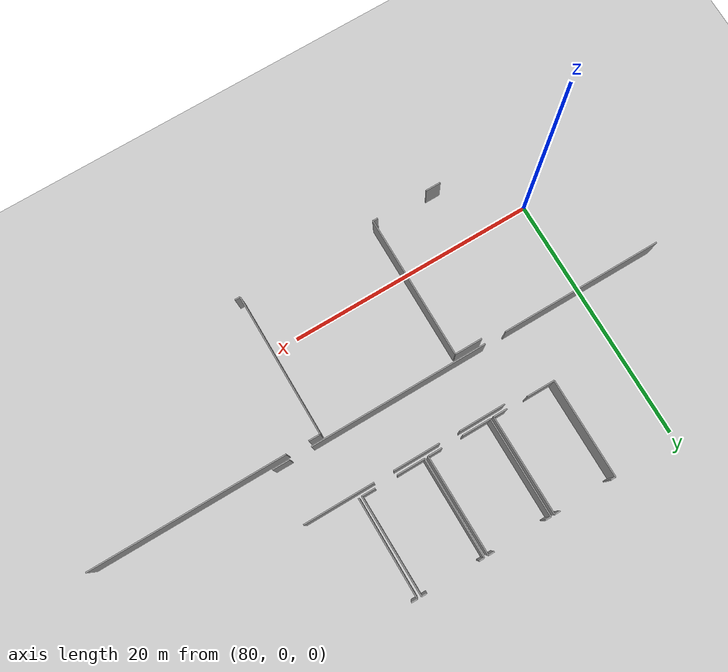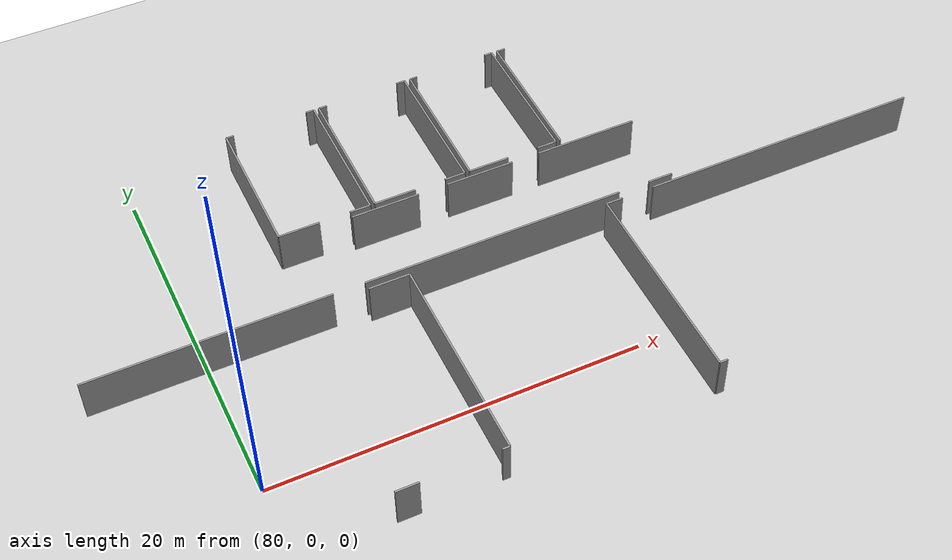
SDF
<sdf version="1.6">
 <world name="default">
  <model name="ground_plane">
   <static>1</static>
   <link name="link">
    <collision name="collision">
     <geometry><plane><normal>0 0 1</normal><size>100 100</size></plane></geometry>
     <surface><friction><ode><mu>100</mu><mu2>50</mu2></ode></friction></surface>
    </collision>
    <visual name="visual">
     <cast_shadows>0</cast_shadows>
     <geometry><plane><normal>0 0 1</normal><size>100 100</size></plane></geometry>
     <material>
      <script><uri>file://media/materials/scripts/gazebo.material</uri><name>Gazebo/Grey</name></script>
     </material>
    </visual>
   </link>
  </model>
  <model name="50037765_PLAN3">
   <static>1</static>
   <link name="Wall_321">
    <collision name="Wall_321_Collision">
     <geometry><box><size>1.38019559125 0.1 2.5</size></box></geometry>
     <pose>0.690097795627 0 1.25 0 0 0</pose>
    </collision>
    <visual name="Wall_321_Visual">
     <pose>0.690097795627 0 1.25 0 0 0</pose>
     <geometry><box><size>1.38019559125 0.1 2.5</size></box></geometry>
     <material>
      <script><uri>file://media/materials/scripts/gazebo.material</uri><name>Gazebo/Grey</name></script>
      <ambient>1 1 1 1</ambient>
     </material>
    </visual>
    <pose>241.865500829 -13.3548284605 0 0 0 3.14159265359</pose>
   </link>
   <link name="Wall_322">
    <collision name="Wall_322_Collision">
     <geometry><box><size>14.4020741061 0.1 2.5</size></box></geometry>
     <pose>7.20103705304 0 1.25 0 0 0</pose>
    </collision>
    <visual name="Wall_322_Visual">
     <pose>7.20103705304 0 1.25 0 0 0</pose>
     <geometry><box><size>14.4020741061 0.1 2.5</size></box></geometry>
     <material>
      <script><uri>file://media/materials/scripts/gazebo.material</uri><name>Gazebo/Grey</name></script>
      <ambient>1 1 1 1</ambient>
     </material>
    </visual>
    <pose>238.709860265 -13.3548284605 0 0 0 3.14159265359</pose>
   </link>
   <link name="Wall_323">
    <collision name="Wall_323_Collision">
     <geometry><box><size>13.0378918338 0.1 2.5</size></box></geometry>
     <pose>6.51894591692 0 1.25 0 0 0</pose>
    </collision>
    <visual name="Wall_323_Visual">
     <pose>6.51894591692 0 1.25 0 0 0</pose>
     <geometry><box><size>13.0378918338 0.1 2.5</size></box></geometry>
     <material>
      <script><uri>file://media/materials/scripts/gazebo.material</uri><name>Gazebo/Grey</name></script>
      <ambient>1 1 1 1</ambient>
     </material>
    </visual>
    <pose>222.594869383 -13.3548284605 0 0 0 3.14159265359</pose>
   </link>
   <link name="Wall_333">
    <collision name="Wall_333_Collision">
     <geometry><box><size>3.74940426641 0.1 2.5</size></box></geometry>
     <pose>1.8747021332 0 1.25 0 0 0</pose>
    </collision>
    <visual name="Wall_333_Visual">
     <pose>1.8747021332 0 1.25 0 0 0</pose>
     <geometry><box><size>3.74940426641 0.1 2.5</size></box></geometry>
     <material>
      <script><uri>file://media/materials/scripts/gazebo.material</uri><name>Gazebo/Grey</name></script>
      <ambient>1 1 1 1</ambient>
     </material>
    </visual>
    <pose>225.426939232 -8.93014507304 0 0 0 0.0</pose>
   </link>
   <link name="Wall_334">
    <collision name="Wall_334_Collision">
     <geometry><box><size>3.7786349281 0.1 2.5</size></box></geometry>
     <pose>1.88931746405 0 1.25 0 0 0</pose>
    </collision>
    <visual name="Wall_334_Visual">
     <pose>1.88931746405 0 1.25 0 0 0</pose>
     <geometry><box><size>3.7786349281 0.1 2.5</size></box></geometry>
     <material>
      <script><uri>file://media/materials/scripts/gazebo.material</uri><name>Gazebo/Grey</name></script>
      <ambient>1 1 1 1</ambient>
     </material>
    </visual>
    <pose>230.833086567 -8.93014507304 0 0 0 0.0</pose>
   </link>
   <link name="Wall_335">
    <collision name="Wall_335_Collision">
     <geometry><box><size>5.68320317216 0.1 2.5</size></box></geometry>
     <pose>2.84160158608 0 1.25 0 0 0</pose>
    </collision>
    <visual name="Wall_335_Visual">
     <pose>2.84160158608 0 1.25 0 0 0</pose>
     <geometry><box><size>5.68320317216 0.1 2.5</size></box></geometry>
     <material>
      <script><uri>file://media/materials/scripts/gazebo.material</uri><name>Gazebo/Grey</name></script>
      <ambient>1 1 1 1</ambient>
     </material>
    </visual>
    <pose>236.200090234 -8.93014507304 0 0 0 0.0</pose>
   </link>
   <link name="Wall_406">
    <collision name="Wall_406_Collision">
     <geometry><box><size>1.12423666669 0.1 2.5</size></box></geometry>
     <pose>0.562118333344 0 1.25 0 0 0</pose>
    </collision>
    <visual name="Wall_406_Visual">
     <pose>0.562118333344 0 1.25 0 0 0</pose>
     <geometry><box><size>1.12423666669 0.1 2.5</size></box></geometry>
     <material>
      <script><uri>file://media/materials/scripts/gazebo.material</uri><name>Gazebo/Grey</name></script>
      <ambient>1 1 1 1</ambient>
     </material>
    </visual>
    <pose>226.587523591 -8.55652638067 0 0 0 3.14159265359</pose>
   </link>
   <link name="Wall_407">
    <collision name="Wall_407_Collision">
     <geometry><box><size>2.25279438771 0.1 2.5</size></box></geometry>
     <pose>1.12639719386 0 1.25 0 0 0</pose>
    </collision>
    <visual name="Wall_407_Visual">
     <pose>1.12639719386 0 1.25 0 0 0</pose>
     <geometry><box><size>2.25279438771 0.1 2.5</size></box></geometry>
     <material>
      <script><uri>file://media/materials/scripts/gazebo.material</uri><name>Gazebo/Grey</name></script>
      <ambient>1 1 1 1</ambient>
     </material>
    </visual>
    <pose>223.755707922 -8.55652638067 0 0 0 3.14159265359</pose>
   </link>
   <link name="Wall_408">
    <collision name="Wall_408_Collision">
     <geometry><box><size>7.96530447547 0.1 2.5</size></box></geometry>
     <pose>3.98265223773 0 1.25 0 0 0</pose>
    </collision>
    <visual name="Wall_408_Visual">
     <pose>3.98265223773 0 1.25 0 0 0</pose>
     <geometry><box><size>7.96530447547 0.1 2.5</size></box></geometry>
     <material>
      <script><uri>file://media/materials/scripts/gazebo.material</uri><name>Gazebo/Grey</name></script>
      <ambient>1 1 1 1</ambient>
     </material>
    </visual>
    <pose>221.502913534 -8.55652638067 0 0 0 1.57079632679</pose>
   </link>
   <link name="Wall_409">
    <collision name="Wall_409_Collision">
     <geometry><box><size>0.408212545037 0.1 2.5</size></box></geometry>
     <pose>0.204106272519 0 1.25 0 0 0</pose>
    </collision>
    <visual name="Wall_409_Visual">
     <pose>0.204106272519 0 1.25 0 0 0</pose>
     <geometry><box><size>0.408212545037 0.1 2.5</size></box></geometry>
     <material>
      <script><uri>file://media/materials/scripts/gazebo.material</uri><name>Gazebo/Grey</name></script>
      <ambient>1 1 1 1</ambient>
     </material>
    </visual>
    <pose>221.502913534 -0.591221905204 0 0 0 0.0</pose>
   </link>
   <link name="Wall_410">
    <collision name="Wall_410_Collision">
     <geometry><box><size>0.467436407425 0.1 2.5</size></box></geometry>
     <pose>0.233718203712 0 1.25 0 0 0</pose>
    </collision>
    <visual name="Wall_410_Visual">
     <pose>0.233718203712 0 1.25 0 0 0</pose>
     <geometry><box><size>0.467436407425 0.1 2.5</size></box></geometry>
     <material>
      <script><uri>file://media/materials/scripts/gazebo.material</uri><name>Gazebo/Grey</name></script>
      <ambient>1 1 1 1</ambient>
     </material>
    </visual>
    <pose>226.094160858 -0.591221905204 0 0 0 0.0</pose>
   </link>
   <link name="Wall_411">
    <collision name="Wall_411_Collision">
     <geometry><box><size>7.96534666925 0.1 2.5</size></box></geometry>
     <pose>3.98267333462 0 1.25 0 0 0</pose>
    </collision>
    <visual name="Wall_411_Visual">
     <pose>3.98267333462 0 1.25 0 0 0</pose>
     <geometry><box><size>7.96534666925 0.1 2.5</size></box></geometry>
     <material>
      <script><uri>file://media/materials/scripts/gazebo.material</uri><name>Gazebo/Grey</name></script>
      <ambient>1 1 1 1</ambient>
     </material>
    </visual>
    <pose>226.561597265 -0.591221905204 0 0 0 -1.5675414312</pose>
   </link>
   <link name="Wall_412">
    <collision name="Wall_412_Collision">
     <geometry><box><size>1.13847072803 0.1 2.5</size></box></geometry>
     <pose>0.569235364017 0 1.25 0 0 0</pose>
    </collision>
    <visual name="Wall_412_Visual">
     <pose>0.569235364017 0 1.25 0 0 0</pose>
     <geometry><box><size>1.13847072803 0.1 2.5</size></box></geometry>
     <material>
      <script><uri>file://media/materials/scripts/gazebo.material</uri><name>Gazebo/Grey</name></script>
      <ambient>1 1 1 1</ambient>
     </material>
    </visual>
    <pose>232.010192605 -8.5532982989 0 0 0 3.14159265359</pose>
   </link>
   <link name="Wall_413">
    <collision name="Wall_413_Collision">
     <geometry><box><size>2.29625911075 0.1 2.5</size></box></geometry>
     <pose>1.14812955538 0 1.25 0 0 0</pose>
    </collision>
    <visual name="Wall_413_Visual">
     <pose>1.14812955538 0 1.25 0 0 0</pose>
     <geometry><box><size>2.29625911075 0.1 2.5</size></box></geometry>
     <material>
      <script><uri>file://media/materials/scripts/gazebo.material</uri><name>Gazebo/Grey</name></script>
      <ambient>1 1 1 1</ambient>
     </material>
    </visual>
    <pose>229.147367016 -8.5532982989 0 0 0 3.14159265359</pose>
   </link>
   <link name="Wall_414">
    <collision name="Wall_414_Collision">
     <geometry><box><size>7.9620763937 0.1 2.5</size></box></geometry>
     <pose>3.98103819685 0 1.25 0 0 0</pose>
    </collision>
    <visual name="Wall_414_Visual">
     <pose>3.98103819685 0 1.25 0 0 0</pose>
     <geometry><box><size>7.9620763937 0.1 2.5</size></box></geometry>
     <material>
      <script><uri>file://media/materials/scripts/gazebo.material</uri><name>Gazebo/Grey</name></script>
      <ambient>1 1 1 1</ambient>
     </material>
    </visual>
    <pose>226.851107906 -8.5532982989 0 0 0 1.57079632679</pose>
   </link>
   <link name="Wall_415">
    <collision name="Wall_415_Collision">
     <geometry><box><size>0.456252502081 0.1 2.5</size></box></geometry>
     <pose>0.228126251041 0 1.25 0 0 0</pose>
    </collision>
    <visual name="Wall_415_Visual">
     <pose>0.228126251041 0 1.25 0 0 0</pose>
     <geometry><box><size>0.456252502081 0.1 2.5</size></box></geometry>
     <material>
      <script><uri>file://media/materials/scripts/gazebo.material</uri><name>Gazebo/Grey</name></script>
      <ambient>1 1 1 1</ambient>
     </material>
    </visual>
    <pose>226.851107906 -0.591221905204 0 0 0 0.0</pose>
   </link>
   <link name="Wall_416">
    <collision name="Wall_416_Collision">
     <geometry><box><size>0.480399570436 0.1 2.5</size></box></geometry>
     <pose>0.240199785218 0 1.25 0 0 0</pose>
    </collision>
    <visual name="Wall_416_Visual">
     <pose>0.240199785218 0 1.25 0 0 0</pose>
     <geometry><box><size>0.480399570436 0.1 2.5</size></box></geometry>
     <material>
      <script><uri>file://media/materials/scripts/gazebo.material</uri><name>Gazebo/Grey</name></script>
      <ambient>1 1 1 1</ambient>
     </material>
    </visual>
    <pose>231.490141006 -0.591221905204 0 0 0 0.0</pose>
   </link>
   <link name="Wall_417">
    <collision name="Wall_417_Collision">
     <geometry><box><size>7.96217512885 0.1 2.5</size></box></geometry>
     <pose>3.98108756442 0 1.25 0 0 0</pose>
    </collision>
    <visual name="Wall_417_Visual">
     <pose>3.98108756442 0 1.25 0 0 0</pose>
     <geometry><box><size>7.96217512885 0.1 2.5</size></box></geometry>
     <material>
      <script><uri>file://media/materials/scripts/gazebo.material</uri><name>Gazebo/Grey</name></script>
      <ambient>1 1 1 1</ambient>
     </material>
    </visual>
    <pose>231.970540577 -0.591221905204 0 0 0 -1.56581625649</pose>
   </link>
   <link name="Wall_418">
    <collision name="Wall_418_Collision">
     <geometry><box><size>1.07975522498 0.1 2.5</size></box></geometry>
     <pose>0.53987761249 0 1.25 0 0 0</pose>
    </collision>
    <visual name="Wall_418_Visual">
     <pose>0.53987761249 0 1.25 0 0 0</pose>
     <geometry><box><size>1.07975522498 0.1 2.5</size></box></geometry>
     <material>
      <script><uri>file://media/materials/scripts/gazebo.material</uri><name>Gazebo/Grey</name></script>
      <ambient>1 1 1 1</ambient>
     </material>
    </visual>
    <pose>237.411510526 -8.5455204011 0 0 0 3.14159265359</pose>
   </link>
   <link name="Wall_419">
    <collision name="Wall_419_Collision">
     <geometry><box><size>2.25609872338 0.1 2.5</size></box></geometry>
     <pose>1.12804936169 0 1.25 0 0 0</pose>
    </collision>
    <visual name="Wall_419_Visual">
     <pose>1.12804936169 0 1.25 0 0 0</pose>
     <geometry><box><size>2.25609872338 0.1 2.5</size></box></geometry>
     <material>
      <script><uri>file://media/materials/scripts/gazebo.material</uri><name>Gazebo/Grey</name></script>
      <ambient>1 1 1 1</ambient>
     </material>
    </visual>
    <pose>234.56215646 -8.5455204011 0 0 0 3.14159265359</pose>
   </link>
   <link name="Wall_420">
    <collision name="Wall_420_Collision">
     <geometry><box><size>7.95307843349 0.1 2.5</size></box></geometry>
     <pose>3.97653921675 0 1.25 0 0 0</pose>
    </collision>
    <visual name="Wall_420_Visual">
     <pose>3.97653921675 0 1.25 0 0 0</pose>
     <geometry><box><size>7.95307843349 0.1 2.5</size></box></geometry>
     <material>
      <script><uri>file://media/materials/scripts/gazebo.material</uri><name>Gazebo/Grey</name></script>
      <ambient>1 1 1 1</ambient>
     </material>
    </visual>
    <pose>232.306057737 -8.5455204011 0 0 0 1.57079632679</pose>
   </link>
   <link name="Wall_421">
    <collision name="Wall_421_Collision">
     <geometry><box><size>0.419396450381 0.1 2.5</size></box></geometry>
     <pose>0.20969822519 0 1.25 0 0 0</pose>
    </collision>
    <visual name="Wall_421_Visual">
     <pose>0.20969822519 0 1.25 0 0 0</pose>
     <geometry><box><size>0.419396450381 0.1 2.5</size></box></geometry>
     <material>
      <script><uri>file://media/materials/scripts/gazebo.material</uri><name>Gazebo/Grey</name></script>
      <ambient>1 1 1 1</ambient>
     </material>
    </visual>
    <pose>232.306057737 -0.592441967605 0 0 0 0.0</pose>
   </link>
   <link name="Wall_422">
    <collision name="Wall_422_Collision">
     <geometry><box><size>0.430071996391 0.1 2.5</size></box></geometry>
     <pose>0.215035998195 0 1.25 0 0 0</pose>
    </collision>
    <visual name="Wall_422_Visual">
     <pose>0.215035998195 0 1.25 0 0 0</pose>
     <geometry><box><size>0.430071996391 0.1 2.5</size></box></geometry>
     <material>
      <script><uri>file://media/materials/scripts/gazebo.material</uri><name>Gazebo/Grey</name></script>
      <ambient>1 1 1 1</ambient>
     </material>
    </visual>
    <pose>236.92043541 -0.592441967605 0 0 0 0.0</pose>
   </link>
   <link name="Wall_423">
    <collision name="Wall_423_Collision">
     <geometry><box><size>7.95331238855 0.1 2.5</size></box></geometry>
     <pose>3.97665619428 0 1.25 0 0 0</pose>
    </collision>
    <visual name="Wall_423_Visual">
     <pose>3.97665619428 0 1.25 0 0 0</pose>
     <geometry><box><size>7.95331238855 0.1 2.5</size></box></geometry>
     <material>
      <script><uri>file://media/materials/scripts/gazebo.material</uri><name>Gazebo/Grey</name></script>
      <ambient>1 1 1 1</ambient>
     </material>
    </visual>
    <pose>237.350507406 -0.592441967605 0 0 0 -1.56312609894</pose>
   </link>
   <link name="Wall_427">
    <collision name="Wall_427_Collision">
     <geometry><box><size>7.95203629686 0.1 2.5</size></box></geometry>
     <pose>3.97601814843 0 1.25 0 0 0</pose>
    </collision>
    <visual name="Wall_427_Visual">
     <pose>3.97601814843 0 1.25 0 0 0</pose>
     <geometry><box><size>7.95203629686 0.1 2.5</size></box></geometry>
     <material>
      <script><uri>file://media/materials/scripts/gazebo.material</uri><name>Gazebo/Grey</name></script>
      <ambient>1 1 1 1</ambient>
     </material>
    </visual>
    <pose>237.678144997 -8.55403541994 0 0 0 1.57079632679</pose>
   </link>
   <link name="Wall_428">
    <collision name="Wall_428_Collision">
     <geometry><box><size>0.484466445107 0.1 2.5</size></box></geometry>
     <pose>0.242233222553 0 1.25 0 0 0</pose>
    </collision>
    <visual name="Wall_428_Visual">
     <pose>0.242233222553 0 1.25 0 0 0</pose>
     <geometry><box><size>0.484466445107 0.1 2.5</size></box></geometry>
     <material>
      <script><uri>file://media/materials/scripts/gazebo.material</uri><name>Gazebo/Grey</name></script>
      <ambient>1 1 1 1</ambient>
     </material>
    </visual>
    <pose>237.678144997 -0.60199912308 0 0 0 0.0</pose>
   </link>
   <link name="Wall_454">
    <collision name="Wall_454_Collision">
     <geometry><box><size>0.439730823733 0.1 2.5</size></box></geometry>
     <pose>0.219865411866 0 1.25 0 0 0</pose>
    </collision>
    <visual name="Wall_454_Visual">
     <pose>0.219865411866 0 1.25 0 0 0</pose>
     <geometry><box><size>0.439730823733 0.1 2.5</size></box></geometry>
     <material>
      <script><uri>file://media/materials/scripts/gazebo.material</uri><name>Gazebo/Grey</name></script>
      <ambient>1 1 1 1</ambient>
     </material>
    </visual>
    <pose>238.172270269 -25.4107225692 0 0 0 3.14159265359</pose>
   </link>
   <link name="Wall_455">
    <collision name="Wall_455_Collision">
     <geometry><box><size>11.6125030978 0.1 2.5</size></box></geometry>
     <pose>5.80625154891 0 1.25 0 0 0</pose>
    </collision>
    <visual name="Wall_455_Visual">
     <pose>5.80625154891 0 1.25 0 0 0</pose>
     <geometry><box><size>11.6125030978 0.1 2.5</size></box></geometry>
     <material>
      <script><uri>file://media/materials/scripts/gazebo.material</uri><name>Gazebo/Grey</name></script>
      <ambient>1 1 1 1</ambient>
     </material>
    </visual>
    <pose>237.732539446 -25.4107225692 0 0 0 1.57079632679</pose>
   </link>
   <link name="Wall_456">
    <collision name="Wall_456_Collision">
     <geometry><box><size>0.936652072517 0.1 2.5</size></box></geometry>
     <pose>0.468326036259 0 1.25 0 0 0</pose>
    </collision>
    <visual name="Wall_456_Visual">
     <pose>0.468326036259 0 1.25 0 0 0</pose>
     <geometry><box><size>0.936652072517 0.1 2.5</size></box></geometry>
     <material>
      <script><uri>file://media/materials/scripts/gazebo.material</uri><name>Gazebo/Grey</name></script>
      <ambient>1 1 1 1</ambient>
     </material>
    </visual>
    <pose>237.732539446 -13.7982194714 0 0 0 0.0</pose>
   </link>
   <link name="Wall_457">
    <collision name="Wall_457_Collision">
     <geometry><box><size>15.8353932477 0.1 2.5</size></box></geometry>
     <pose>7.91769662386 0 1.25 0 0 0</pose>
    </collision>
    <visual name="Wall_457_Visual">
     <pose>7.91769662386 0 1.25 0 0 0</pose>
     <geometry><box><size>15.8353932477 0.1 2.5</size></box></geometry>
     <material>
      <script><uri>file://media/materials/scripts/gazebo.material</uri><name>Gazebo/Grey</name></script>
      <ambient>1 1 1 1</ambient>
     </material>
    </visual>
    <pose>240.487847035 -13.7982194714 0 0 0 0.0</pose>
   </link>
   <link name="Wall_460">
    <collision name="Wall_460_Collision">
     <geometry><box><size>0.397028639694 0.1 2.5</size></box></geometry>
     <pose>0.198514319847 0 1.25 0 0 0</pose>
    </collision>
    <visual name="Wall_460_Visual">
     <pose>0.198514319847 0 1.25 0 0 0</pose>
     <geometry><box><size>0.397028639694 0.1 2.5</size></box></geometry>
     <material>
      <script><uri>file://media/materials/scripts/gazebo.material</uri><name>Gazebo/Grey</name></script>
      <ambient>1 1 1 1</ambient>
     </material>
    </visual>
    <pose>226.535925119 -25.4323278409 0 0 0 3.14159265359</pose>
   </link>
   <link name="Wall_461">
    <collision name="Wall_461_Collision">
     <geometry><box><size>1.21980822144 0.1 2.5</size></box></geometry>
     <pose>0.609904110721 0 1.25 0 0 0</pose>
    </collision>
    <visual name="Wall_461_Visual">
     <pose>0.609904110721 0 1.25 0 0 0</pose>
     <geometry><box><size>1.21980822144 0.1 2.5</size></box></geometry>
     <material>
      <script><uri>file://media/materials/scripts/gazebo.material</uri><name>Gazebo/Grey</name></script>
      <ambient>1 1 1 1</ambient>
     </material>
    </visual>
    <pose>221.9721292 -25.4323278409 0 0 0 3.14159265359</pose>
   </link>
   <link name="Wall_467">
    <collision name="Wall_467_Collision">
     <geometry><box><size>2.22280118702 0.1 2.5</size></box></geometry>
     <pose>1.11140059351 0 1.25 0 0 0</pose>
    </collision>
    <visual name="Wall_467_Visual">
     <pose>1.11140059351 0 1.25 0 0 0</pose>
     <geometry><box><size>2.22280118702 0.1 2.5</size></box></geometry>
     <material>
      <script><uri>file://media/materials/scripts/gazebo.material</uri><name>Gazebo/Grey</name></script>
      <ambient>1 1 1 1</ambient>
     </material>
    </visual>
    <pose>224.333966664 -13.8018288227 0 0 0 0.0</pose>
   </link>
   <link name="Wall_468">
    <collision name="Wall_468_Collision">
     <geometry><box><size>11.6305176941 0.1 2.5</size></box></geometry>
     <pose>5.81525884705 0 1.25 0 0 0</pose>
    </collision>
    <visual name="Wall_468_Visual">
     <pose>5.81525884705 0 1.25 0 0 0</pose>
     <geometry><box><size>11.6305176941 0.1 2.5</size></box></geometry>
     <material>
      <script><uri>file://media/materials/scripts/gazebo.material</uri><name>Gazebo/Grey</name></script>
      <ambient>1 1 1 1</ambient>
     </material>
    </visual>
    <pose>226.556767851 -13.8018288227 0 0 0 -1.57258840041</pose>
   </link>
   <pose>-135.75 21.1468211655 0 0 0 0</pose>
  </model>
 </world>
</sdf>
